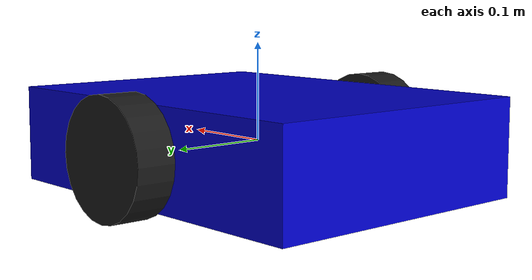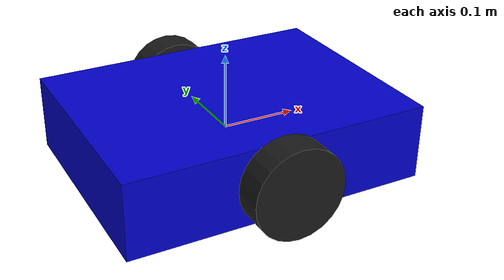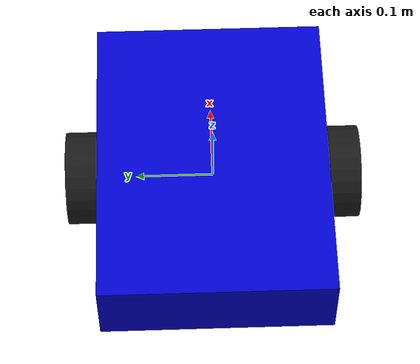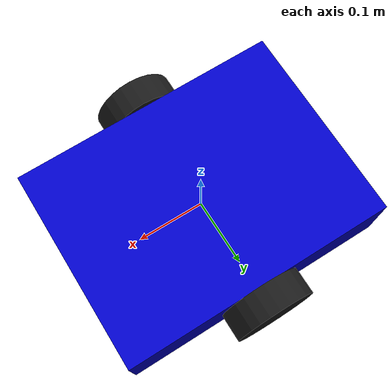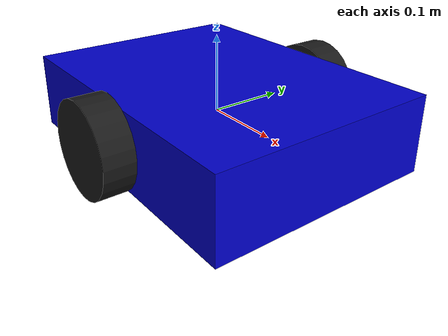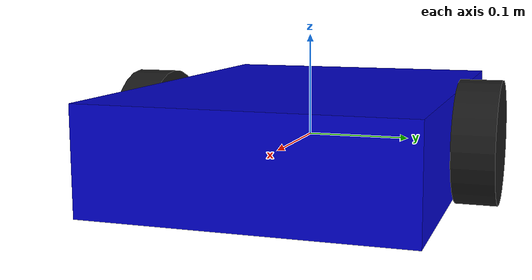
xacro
<?xml version="1.0"?>
<robot xmlns:xacro="http://www.ros.org/wiki/xacro" name="my_robot">
  <!-- Robot constants -->
  <xacro:property name="base_width" value="0.3"/>
  <xacro:property name="base_length" value="0.4"/>
  <xacro:property name="base_height" value="0.1"/>
  <xacro:property name="wheel_radius" value="0.06"/>
  <xacro:property name="wheel_width" value="0.04"/>

  <!-- Base link -->
  <link name="base_link">
    <visual>
      <geometry>
        <box size="${base_length} ${base_width} ${base_height}"/>
      </geometry>
      <material name="blue">
        <color rgba="0 0 0.8 1"/>
      </material>
    </visual>
    <collision>
      <geometry>
        <box size="${base_length} ${base_width} ${base_height}"/>
      </geometry>
    </collision>
    <inertial>
      <mass value="5.0"/>
      <inertia
        ixx="${1/12 * 5.0 * (base_width*base_width + base_height*base_height)}"
        ixy="0" ixz="0"
        iyy="${1/12 * 5.0 * (base_length*base_length + base_height*base_height)}"
        iyz="0"
        izz="${1/12 * 5.0 * (base_length*base_length + base_width*base_width)}"/>
    </inertial>
  </link>

  <!-- Wheel macro -->
  <xacro:macro name="wheel" params="prefix x y">
    <link name="${prefix}_wheel">
      <visual>
        <geometry>
          <cylinder radius="${wheel_radius}" length="${wheel_width}"/>
        </geometry>
        <material name="black">
          <color rgba="0.1 0.1 0.1 1"/>
        </material>
      </visual>
      <collision>
        <geometry>
          <cylinder radius="${wheel_radius}" length="${wheel_width}"/>
        </geometry>
      </collision>
      <inertial>
        <mass value="0.5"/>
        <inertia
          ixx="${1/12 * 0.5 * (3*wheel_radius*wheel_radius + wheel_width*wheel_width)}"
          ixy="0" ixz="0"
          iyy="${1/12 * 0.5 * (3*wheel_radius*wheel_radius + wheel_width*wheel_width)}"
          iyz="0"
          izz="${0.5 * wheel_radius*wheel_radius/2}"/>
      </inertial>
    </link>

    <joint name="${prefix}_wheel_joint" type="continuous">
      <parent link="base_link"/>
      <child link="${prefix}_wheel"/>
      <origin xyz="${x} ${y} 0" rpy="${pi/2} 0 0"/>
      <axis xyz="0 0 1"/>
      <dynamics damping="0.1" friction="0.1"/>
    </joint>
  </xacro:macro>

  <!-- Use the wheel macro -->
  <xacro:wheel prefix="left" x="0" y="${base_width/2 + wheel_width/2}"/>
  <xacro:wheel prefix="right" x="0" y="-${base_width/2 + wheel_width/2}"/>

  <!-- UPDATED: ROS 2 Gazebo Plugins -->

  <!-- Joint State Publisher -->
  <gazebo>
    <plugin name="gazebo_ros_joint_state_publisher" filename="libgazebo_ros_joint_state_publisher.so">
      <ros>
        <namespace>/my_robot</namespace>
        <remapping>~/out:=joint_states</remapping>
      </ros>
      <update_rate>50</update_rate>
      <joint_name>left_wheel_joint</joint_name>
      <joint_name>right_wheel_joint</joint_name>
    </plugin>
  </gazebo>

  <!-- Differential Drive Controller (ROS 2 version) -->
  <gazebo>
    <plugin name="gazebo_ros_diff_drive" filename="libgazebo_ros_diff_drive.so">
      <ros>
        <namespace>/my_robot</namespace>
        <remapping>cmd_vel:=cmd_vel</remapping>
        <remapping>odom:=odom</remapping>
      </ros>

      <!-- Wheel Information -->
      <left_joint>left_wheel_joint</left_joint>
      <right_joint>right_wheel_joint</right_joint>
      <wheel_separation>${base_width + wheel_width}</wheel_separation>
      <wheel_diameter>${2 * wheel_radius}</wheel_diameter>

      <!-- Limits -->
      <max_wheel_torque>20</max_wheel_torque>
      <max_wheel_acceleration>1.0</max_wheel_acceleration>

      <!-- Pi-Optimized Settings -->
      <publish_odom>true</publish_odom>
      <publish_odom_tf>true</publish_odom_tf>
      <publish_wheel_tf>true</publish_wheel_tf>
      <odometry_frame>odom</odometry_frame>
      <robot_base_frame>base_link</robot_base_frame>

      <!-- Reduced update rate for Pi performance -->
      <update_rate>30.0</update_rate>
    </plugin>
  </gazebo>

  <!-- Optional: IMU Plugin for navigation -->
  <gazebo reference="base_link">
    <sensor name="imu_sensor" type="imu">
      <plugin filename="libgazebo_ros_imu_sensor.so" name="imu_plugin">
        <ros>
          <namespace>/my_robot</namespace>
          <remapping>~/out:=imu</remapping>
        </ros>
        <initial_orientation_as_reference>false</initial_orientation_as_reference>
      </plugin>
      <always_on>true</always_on>
      <update_rate>20</update_rate>
      <visualize>false</visualize>
    </sensor>
  </gazebo>

  <!-- Pi-Optimized Material Properties -->
  <gazebo reference="base_link">
    <material>Gazebo/Blue</material>
    <mu1>0.2</mu1>
    <mu2>0.2</mu2>
    <selfCollide>false</selfCollide>
  </gazebo>

  <gazebo reference="left_wheel">
    <material>Gazebo/Black</material>
    <mu1>1.0</mu1>
    <mu2>1.0</mu2>
    <kp>1000000.0</kp>
    <kd>100.0</kd>
    <minDepth>0.001</minDepth>
    <maxVel>1.0</maxVel>
  </gazebo>

  <gazebo reference="right_wheel">
    <material>Gazebo/Black</material>
    <mu1>1.0</mu1>
    <mu2>1.0</mu2>
    <kp>1000000.0</kp>
    <kd>100.0</kd>
    <minDepth>0.001</minDepth>
    <maxVel>1.0</maxVel>
  </gazebo>

</robot>
